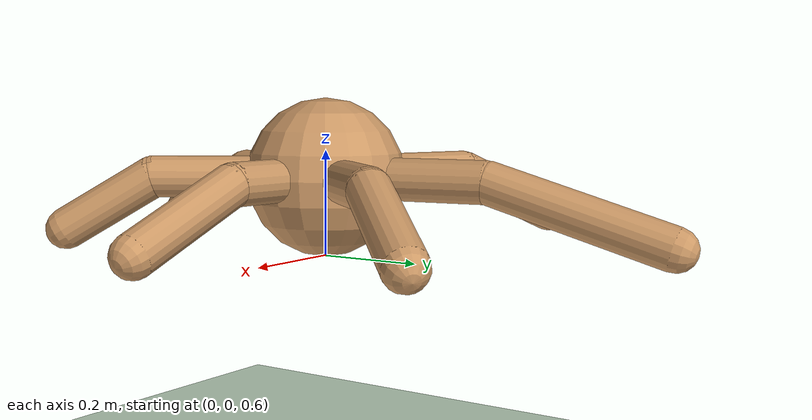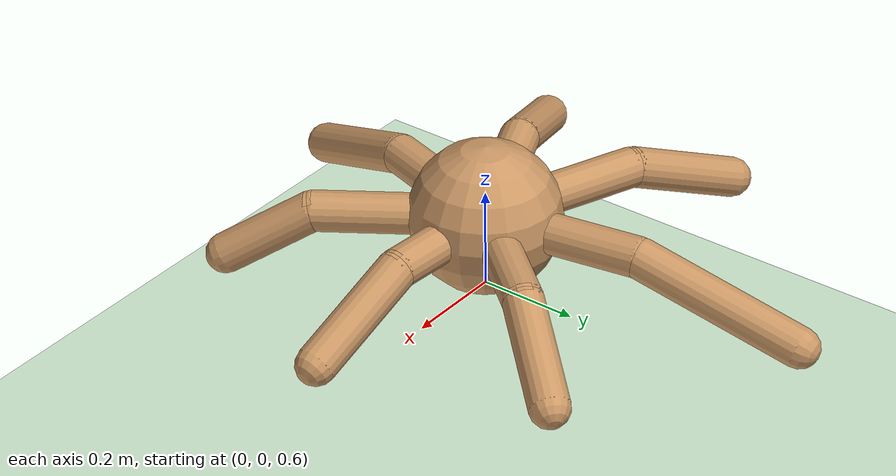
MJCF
<mujoco model="mutant_ant">
  <compiler angle="degree" coordinate="local" inertiafromgeom="true"/>
  <option integrator="RK4" timestep="0.01"/>
  <default>
    <joint armature="1" damping="1" limited="true"/>
    <geom conaffinity="1" condim="3" density="5.0" friction="1 0.5 0.5" margin="0.01" rgba="0.8 0.6 0.4 1"/>
  </default>
  <asset>
    <texture builtin="checker" height="512" name="texplane" rgb1=".2 .3 .4" rgb2=".1 0.15 0.2" type="2d" width="512"/>
    <material name="MatPlane" reflectance="0.5" shininess="1" specular="1" texrepeat="60 60" texture="texplane"/>
  </asset>
  <worldbody>
    <light cutoff="100" diffuse="1 1 1" dir="-0 0 -1.3" directional="true" exponent="1" pos="0 0 1.3" specular=".1 .1 .1"/>
    <geom conaffinity="1" condim="3" material="MatPlane" name="floor" pos="0 0 0" rgba="0.8 0.9 0.8 1" size="40 40 40" type="plane"/>
    <body name="torso" pos="0 0 0.750">
      <camera name="track" mode="trackcom" pos="0 -3 2.0" euler="60 0 0"/>
      <freejoint name="root"/>
      <geom name="torso_geom" pos="0 0 0" size="0.15" type="sphere"/>
      <body name="leg_0" pos="0 0 0" euler="0 0 -4.286">
        <geom fromto="0.0 0.0 0.0 0.1 0.0 0.0" name="aux_0_geom" size="0.04" type="capsule"/>
        <body name="leg_0_aux" pos="0.1 0.0 0">
          <joint axis="0 0 1" name="hip_0" pos="0.0 0.0 0.0" range="-25.767 32.374" type="hinge"/>
          <geom fromto="0.0 0.0 0.0 0.147 0.0 0.0" name="thigh_0_geom" size="0.04" type="capsule"/>
          <body pos="0.147 0.0 0" name="leg_0_ankle">
            <joint axis="0 1 0" name="ankle_0" pos="0.0 0.0 0.0" range="20.718 78.221" type="hinge"/>
            <geom fromto="0.0 0.0 0.0 0.222 0.0 -0.1" name="calf_0_geom" size="0.04" type="capsule"/>
          </body>
        </body>
      </body>
      <body name="leg_1" pos="0 0 0" euler="0 0 50.183">
        <geom fromto="0.0 0.0 0.0 0.1 0.0 0.0" name="aux_1_geom" size="0.04" type="capsule"/>
        <body name="leg_1_aux" pos="0.1 0.0 0">
          <joint axis="0 0 1" name="hip_1" pos="0.0 0.0 0.0" range="-28.286 34.317" type="hinge"/>
          <geom fromto="0.0 0.0 0.0 0.202 0.0 0.0" name="thigh_1_geom" size="0.04" type="capsule"/>
          <body pos="0.202 0.0 0" name="leg_1_ankle">
            <joint axis="0 1 0" name="ankle_1" pos="0.0 0.0 0.0" range="32.223 72.003" type="hinge"/>
            <geom fromto="0.0 0.0 0.0 0.202 0.0 -0.1" name="calf_1_geom" size="0.04" type="capsule"/>
          </body>
        </body>
      </body>
      <body name="leg_2" pos="0 0 0" euler="0 0 99.445">
        <geom fromto="0.0 0.0 0.0 0.1 0.0 0.0" name="aux_2_geom" size="0.04" type="capsule"/>
        <body name="leg_2_aux" pos="0.1 0.0 0">
          <joint axis="0 0 1" name="hip_2" pos="0.0 0.0 0.0" range="-33.354 30.843" type="hinge"/>
          <geom fromto="0.0 0.0 0.0 0.222 0.0 0.0" name="thigh_2_geom" size="0.04" type="capsule"/>
          <body pos="0.222 0.0 0" name="leg_2_ankle">
            <joint axis="0 1 0" name="ankle_2" pos="0.0 0.0 0.0" range="32.186 72.802" type="hinge"/>
            <geom fromto="0.0 0.0 0.0 0.329 0.0 -0.1" name="calf_2_geom" size="0.04" type="capsule"/>
          </body>
        </body>
      </body>
      <body name="leg_3" pos="0 0 0" euler="0 0 158.959">
        <geom fromto="0.0 0.0 0.0 0.1 0.0 0.0" name="aux_3_geom" size="0.04" type="capsule"/>
        <body name="leg_3_aux" pos="0.1 0.0 0">
          <joint axis="0 0 1" name="hip_3" pos="0.0 0.0 0.0" range="-34.138 25.559" type="hinge"/>
          <geom fromto="0.0 0.0 0.0 0.234 0.0 0.0" name="thigh_3_geom" size="0.04" type="capsule"/>
          <body pos="0.234 0.0 0" name="leg_3_ankle">
            <joint axis="0 1 0" name="ankle_3" pos="0.0 0.0 0.0" range="32.625 66.910" type="hinge"/>
            <geom fromto="0.0 0.0 0.0 0.238 0.0 -0.1" name="calf_3_geom" size="0.04" type="capsule"/>
          </body>
        </body>
      </body>
      <body name="leg_4" pos="0 0 0" euler="0 0 204.027">
        <geom fromto="0.0 0.0 0.0 0.1 0.0 0.0" name="aux_4_geom" size="0.04" type="capsule"/>
        <body name="leg_4_aux" pos="0.1 0.0 0">
          <joint axis="0 0 1" name="hip_4" pos="0.0 0.0 0.0" range="-34.669 25.286" type="hinge"/>
          <geom fromto="0.0 0.0 0.0 0.197 0.0 0.0" name="thigh_4_geom" size="0.04" type="capsule"/>
          <body pos="0.197 0.0 0" name="leg_4_ankle">
            <joint axis="0 1 0" name="ankle_4" pos="0.0 0.0 0.0" range="24.512 63.514" type="hinge"/>
            <geom fromto="0.0 0.0 0.0 0.265 0.0 -0.1" name="calf_4_geom" size="0.04" type="capsule"/>
          </body>
        </body>
      </body>
      <body name="leg_5" pos="0 0 0" euler="0 0 252.874">
        <geom fromto="0.0 0.0 0.0 0.1 0.0 0.0" name="aux_5_geom" size="0.04" type="capsule"/>
        <body name="leg_5_aux" pos="0.1 0.0 0">
          <joint axis="0 0 1" name="hip_5" pos="0.0 0.0 0.0" range="-31.634 33.828" type="hinge"/>
          <geom fromto="0.0 0.0 0.0 0.181 0.0 0.0" name="thigh_5_geom" size="0.04" type="capsule"/>
          <body pos="0.181 0.0 0" name="leg_5_ankle">
            <joint axis="0 1 0" name="ankle_5" pos="0.0 0.0 0.0" range="33.758 71.144" type="hinge"/>
            <geom fromto="0.0 0.0 0.0 0.260 0.0 -0.1" name="calf_5_geom" size="0.04" type="capsule"/>
          </body>
        </body>
      </body>
      <body name="leg_6" pos="0 0 0" euler="0 0 303.596">
        <geom fromto="0.0 0.0 0.0 0.1 0.0 0.0" name="aux_6_geom" size="0.04" type="capsule"/>
        <body name="leg_6_aux" pos="0.1 0.0 0">
          <joint axis="0 0 1" name="hip_6" pos="0.0 0.0 0.0" range="-27.997 28.093" type="hinge"/>
          <geom fromto="0.0 0.0 0.0 0.229 0.0 0.0" name="thigh_6_geom" size="0.04" type="capsule"/>
          <body pos="0.229 0.0 0" name="leg_6_ankle">
            <joint axis="0 1 0" name="ankle_6" pos="0.0 0.0 0.0" range="30.480 69.030" type="hinge"/>
            <geom fromto="0.0 0.0 0.0 0.168 0.0 -0.1" name="calf_6_geom" size="0.04" type="capsule"/>
          </body>
        </body>
      </body>
    </body>
  </worldbody>
  <actuator>
    <motor ctrllimited="true" ctrlrange="-1.0 1.0" joint="hip_0" gear="30"/>
    <motor ctrllimited="true" ctrlrange="-1.0 1.0" joint="ankle_0" gear="30"/>
    <motor ctrllimited="true" ctrlrange="-1.0 1.0" joint="hip_1" gear="30"/>
    <motor ctrllimited="true" ctrlrange="-1.0 1.0" joint="ankle_1" gear="30"/>
    <motor ctrllimited="true" ctrlrange="-1.0 1.0" joint="hip_2" gear="30"/>
    <motor ctrllimited="true" ctrlrange="-1.0 1.0" joint="ankle_2" gear="30"/>
    <motor ctrllimited="true" ctrlrange="-1.0 1.0" joint="hip_3" gear="30"/>
    <motor ctrllimited="true" ctrlrange="-1.0 1.0" joint="ankle_3" gear="30"/>
    <motor ctrllimited="true" ctrlrange="-1.0 1.0" joint="hip_4" gear="30"/>
    <motor ctrllimited="true" ctrlrange="-1.0 1.0" joint="ankle_4" gear="30"/>
    <motor ctrllimited="true" ctrlrange="-1.0 1.0" joint="hip_5" gear="30"/>
    <motor ctrllimited="true" ctrlrange="-1.0 1.0" joint="ankle_5" gear="30"/>
    <motor ctrllimited="true" ctrlrange="-1.0 1.0" joint="hip_6" gear="30"/>
    <motor ctrllimited="true" ctrlrange="-1.0 1.0" joint="ankle_6" gear="30"/>
  </actuator>
</mujoco>
